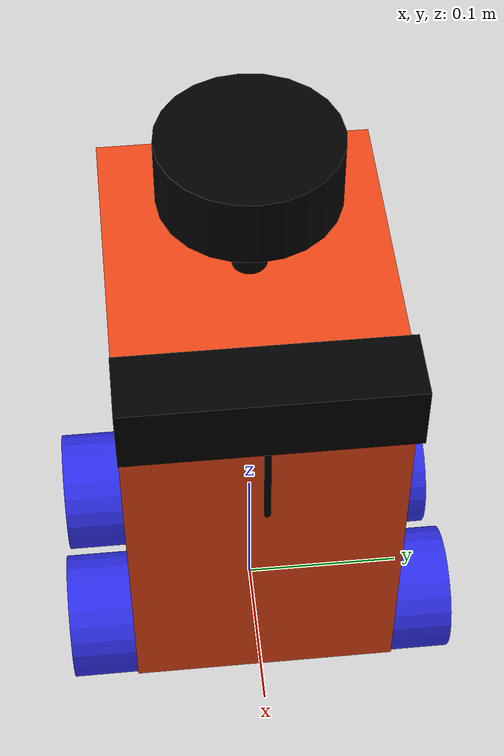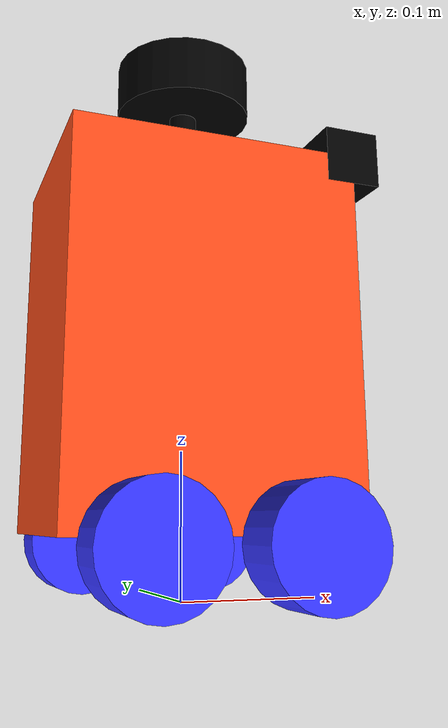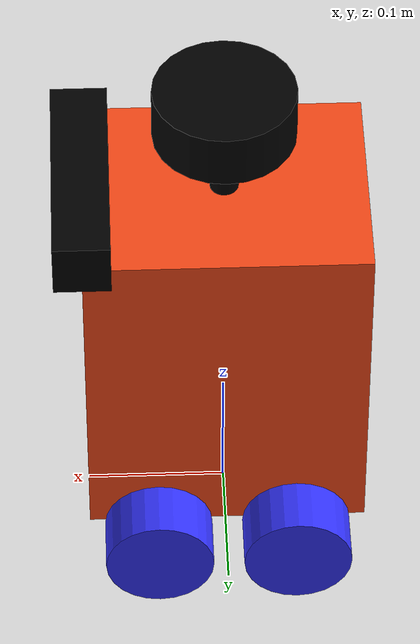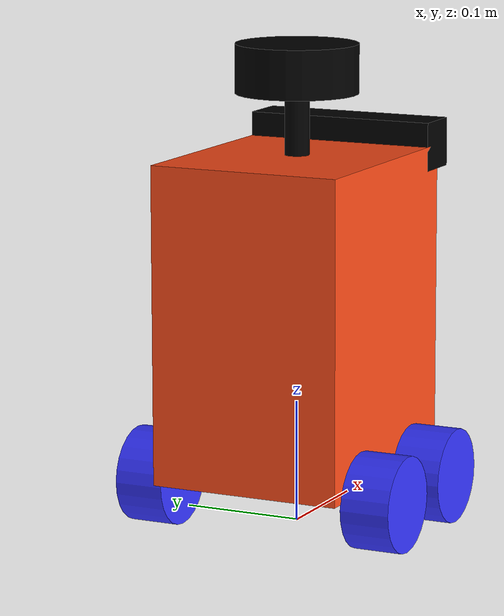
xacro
<?xml version="1.0" encoding="UTF-8" ?>
<robot name="Bumbar" xmlns:xacro="http://www.ros.org/wiki/xacro" >

    <xacro:include filename="inertial_macros.xacro"/>
    <xacro:include filename="camera.xacro"/>
    <xacro:include filename="lidar.xacro"/>

    <xacro:property name="chassis_length" value="0.20"/>
    <xacro:property name="chassis_width" value="0.16"/>
    <xacro:property name="chassis_height" value="0.26"/>
    <xacro:property name="chassis_mass" value="1.0"/>
    <xacro:property name="wheel_radius" value="0.039"/>
    <xacro:property name="wheel_thickness" value="0.041"/>
    <xacro:property name="wheel_mass" value="0.05"/>

    <!-- FRONT LEFT WHEEL -->
    <xacro:property name="front_left_wheel_offset_x" value="-0.1"/>
    <xacro:property name="front_left_wheel_offset_y" value="0.05"/>
    <xacro:property name="front_left_wheel_offset_z" value="0.01"/>
    <!-- FRONT RIGHT WHEEL -->
    <xacro:property name="front_right_wheel_offset_x" value="0.10"/>
    <xacro:property name="front_right_wheel_offset_y" value="0.05"/>
    <xacro:property name="front_right_wheel_offset_z" value="0.01"/>
    <!-- BACK LEFT WHEEL -->
    <xacro:property name="bacK_left_wheel_offset_x" value="-0.1"/>
    <xacro:property name="bacK_left_wheel_offset_y" value="-0.05"/>
    <xacro:property name="bacK_left_wheel_offset_z" value="0.01"/>
    <!-- BACK RIGHT WHEEL -->
    <xacro:property name="bacK_right_wheel_offset_x" value="0.1"/>
    <xacro:property name="bacK_right_wheel_offset_y" value="-0.05"/>
    <xacro:property name="bacK_right_wheel_offset_z" value="0.01"/>

    <material name="white">
        <color rgba="1 1 1 1" />
    </material>

    <material name="orange">
        <color rgba="1 0.3 0.1 1"/>
    </material>

    <material name="blue">
        <color rgba="0.2 0.2 1 1"/>
    </material>

    <material name="black">
        <color rgba="0 0 0 1"/>
    </material>

    <material name="red">
        <color rgba="1 0 0 1"/>
    </material>

    <!-- BASE LINK -->

    <link name="base_link">

    </link>

    <!-- CHASSIS LINK -->

    <joint name="chassis_joint" type="fixed">
        <parent link="base_link"/>
        <child link="chassis"/>
        <origin xyz="0.0 0.0 0.1739"/>
    </joint>

    <link name="chassis">
        <visual>
            <origin xyz="0.0 0.0 0.0"/>
            <geometry>
                <box size="${chassis_length} ${chassis_width} ${chassis_height}"/>
            </geometry>
            <material name="orange"/>
        </visual>
        <collision>
            <origin xyz="0.0 0 0.0"/>
            <geometry>
                <box size="${chassis_length} ${chassis_width} ${chassis_height}"/>
            </geometry>
        </collision>
        <xacro:inertial_box mass="0.5" x="${chassis_length}" y="${chassis_width}" z="${chassis_height}">
            <origin xyz="0.1 0 0.14" rpy="0 0 0"/>
        </xacro:inertial_box>
    </link>

    <gazebo reference="chassis">
        <material>Gazebo/Orange</material>
    </gazebo>

    <!--FRONT RIGHT WHEEL LINK -->

    <joint name="front_right_wheel_joint" type="continuous">
        <parent link="base_link"/>
        <child link="front_right_wheel"/>
        <origin xyz="0.05 -0.1  0.039" rpy="${pi/2} 0 0" />
        <axis xyz="0 0 -1"/>
    </joint>

    <link name="front_right_wheel">
        <visual>
            <geometry>
                <cylinder radius="${wheel_radius}" length="${wheel_thickness}"/>
            </geometry>
            <material name="blue"/>
        </visual>
        <collision>
            <geometry>
                <sphere radius="${wheel_radius}"/>
            </geometry>
            <origin xyz="0.0 0  0" rpy="${pi/2} 0 0" />
            <!--axis xyz="0 -1 -1"/-->
        </collision>
        <xacro:inertial_cylinder mass="${wheel_mass}" length="${wheel_thickness}" radius="${wheel_radius}">
           <origin xyz="0.0 0  0.0" rpy="${pi/2} 0 0" />
            <!--axis xyz="0 -1 -1"/-->
        </xacro:inertial_cylinder>
    </link>

    <gazebo reference="front_right_wheel">
        <material>Gazebo/Blue</material>
    </gazebo>

    <!-- FRONT RIGHT WHEEL LINK -->
    <joint name="fron_left_wheel_joint" type="continuous">
        <parent link="base_link"/>
        <child link="front_left_wheel"/>
        <origin xyz="0.05 0.1 0.039" rpy="-${pi/2} 0 0" />
        <axis xyz="0 0 1"/>
    </joint>

    <link name="front_left_wheel">
        <visual>
            <geometry>
                <cylinder radius="${wheel_radius}" length="${wheel_thickness}"/>
            </geometry>
            <material name="blue"/>
        </visual>
        <collision>
            <geometry>
                <sphere radius="${wheel_radius}"/>
            </geometry>
        </collision>
        <xacro:inertial_cylinder mass="${wheel_mass}" length="${wheel_thickness}" radius="${wheel_radius}">
            <origin xyz="0.0 0 0.0" rpy="-${pi/2} 0 0" />
            <!--axis xyz="0 1 1"/-->
        </xacro:inertial_cylinder>
    </link>

    <gazebo reference="front_right_wheel">
        <material>Gazebo/Blue</material>
    </gazebo>

    <!-- BACK RIGHT WHEEL LINK -->
    <joint name="back_right_wheel_joint" type="continuous">
        <parent link="base_link"/>
        <child link="back_right_wheel"/>
        <origin xyz="-0.05 -0.1  0.039" rpy="${pi/2} 0 0" />
        <axis xyz="0 0 -1"/>
    </joint>

    <link name="back_right_wheel">
        <visual>
            <geometry>
                <cylinder radius="${wheel_radius}" length="${wheel_thickness}"/>
            </geometry>
            <material name="blue"/>
        </visual>
        <collision>
            <geometry>
                <sphere radius="${wheel_radius}"/>
            </geometry>
            <origin xyz="0.0 0  0.0" rpy="${pi/2} 0 0" />
            <!--axis xyz="0 0 -1"/-->
        </collision>
        <xacro:inertial_cylinder mass="${wheel_mass}" length="${wheel_thickness}" radius="${wheel_radius}">
            <origin xyz="0.0 0  0.0" rpy="${pi/2} 0 0" />
        </xacro:inertial_cylinder>
    </link>

    <gazebo reference="back_right_wheel">
        <material>Gazebo/Blue</material>
    </gazebo>

    <!-- BACK LEFT WHEEL LINK -->

    <joint name="back_left_wheel_joint" type="continuous">
        <parent link="base_link"/>
        <child link="back_left_wheel"/>
        <origin xyz="-0.05 0.1 0.039" rpy="-${pi/2} 0 0" />
        <axis xyz="0 0 1"/>
    </joint>

    <link name="back_left_wheel">
        <visual>
            <geometry>
                <cylinder radius="${wheel_radius}" length="${wheel_thickness}"/>
            </geometry>
            <material name="blue"/>
        </visual>
        <collision>
            <geometry>
                <sphere radius="${wheel_radius}"/>
            </geometry>
            <origin xyz="0.0 0. 0.0" rpy="-${pi/2} 0 0" />
            <!--axis xyz="0 0 1"/-->
        </collision>
        <xacro:inertial_cylinder mass="${wheel_mass}" length="${wheel_thickness}" radius="${wheel_radius}">
            <origin xyz="0.0 0 0.0" rpy="-${pi/2} 0 0" />
        </xacro:inertial_cylinder>
    </link>

    <gazebo reference="left_wheel">
        <material>Gazebo/Blue</material>
    </gazebo>

</robot>

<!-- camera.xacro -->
<robot xmlns:xacro="http://www.ros.org/wiki/xacro" >

    <joint name="camera_joint" type="fixed">
        <parent link="chassis"/>
        <child link="camera_link"/>
        <origin xyz="0.1 0 0.13" rpy="0 0 0"/>
    </joint>

    <link name="camera_link">
        <visual>
            <geometry>
                <box size="0.040 0.16 0.04"/>
            </geometry>
            <material name="black"/>
        </visual>
        <visual>
            <origin xyz="0 0 -0.05"/>
            <geometry>
                <cylinder radius="0.002" length="0.1"/>
            </geometry>
            <material name="black"/>
        </visual>
    </link>

    <joint name="camera_optical_joint" type="fixed">
        <parent link="camera_link"/>
        <child link="camera_link_optical"/>
        <origin xyz="0 0 0" rpy="${-pi/2} 0 ${-pi/2}"/>
    </joint>

    <link name="camera_link_optical"></link>

    <gazebo reference="camera_link">
        <material>Gazebo/Black</material>

        <sensor name="camera" type="camera">
            <pose> 0 0 0 0 0 0 </pose>
            <visualize>true</visualize>
            <update_rate>10</update_rate>
            <camera>
                <horizontal_fov>1.089</horizontal_fov>
                <image>
                    <format>R8G8B8</format>
                    <width>640</width>
                    <height>480</height>
                </image>
                <clip>
                    <near>0.05</near>
                    <far>8.0</far>
                </clip>
            </camera>
            <plugin name="camera_controller" filename="libgazebo_ros_camera.so">
                <frame_name>camera_link_optical</frame_name>
            </plugin>
        </sensor>
    </gazebo>

</robot>
<?xml version="1.0"?>
<robot xmlns:xacro="http://www.ros.org/wiki/xacro" >

    <!-- Specify some standard inertial calculations https://en.wikipedia.org/wiki/List_of_moments_of_inertia -->
    <!-- These make use of xacro's mathematical functionality -->

    <xacro:macro name="inertial_sphere" params="mass radius *origin">
        <inertial>
            <xacro:insert_block name="origin"/>
            <mass value="${mass}" />
            <inertia ixx="${(2/5) * mass * (radius*radius)}" ixy="0.0" ixz="0.0"
                    iyy="${(2/5) * mass * (radius*radius)}" iyz="0.0"
                    izz="${(2/5) * mass * (radius*radius)}" />
        </inertial>
    </xacro:macro>

    <xacro:macro name="inertial_box" params="mass x y z *origin">
        <inertial>
            <xacro:insert_block name="origin"/>
            <mass value="${mass}" />
            <inertia ixx="${(1/12) * mass * (y*y+z*z)}" ixy="0.0" ixz="0.0"
                    iyy="${(1/12) * mass * (x*x+z*z)}" iyz="0.0"
                    izz="${(1/12) * mass * (x*x+y*y)}" />
        </inertial>
    </xacro:macro>

    <xacro:macro name="inertial_cylinder" params="mass length radius *origin">
        <inertial>
            <xacro:insert_block name="origin"/>
            <mass value="${mass}" />
            <inertia ixx="${(1/12) * mass * (3*radius*radius + length*length)}" ixy="0.0" ixz="0.0"
                    iyy="${(1/12) * mass * (3*radius*radius + length*length)}" iyz="0.0"
                    izz="${(1/2) * mass * (radius*radius)}" />
        </inertial>
    </xacro:macro>

</robot>

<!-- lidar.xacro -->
<robot xmlns:xacro="http://www.ros.org/wiki/xacro" >

    <joint name="laser_joint" type="fixed">
        <parent link="chassis"/>
        <child link="laser"/>
        <origin xyz="0.0 0.0 0.20" rpy="0 0 0"/>
    </joint>

    <link name="laser">
        <visual>
            <geometry>
                <cylinder radius="0.05" length="0.04"/>
            </geometry>
            <material name="black"/>
        </visual>
        <visual>
            <origin xyz="0 0 -0.05"/>
            <geometry>
                <cylinder radius="0.01" length="0.1"/>
            </geometry>
            <material name="black"/>
        </visual>
        <collision>
            <geometry>
                <cylinder radius="0.05" length="0.04"/>
            </geometry>
        </collision>
        <xacro:inertial_cylinder mass="0.1" length="0.04" radius="0.05">
            <origin xyz="0 0 0" rpy="0 0 0"/>
        </xacro:inertial_cylinder>
    </link>

    <gazebo reference="laser_frame">
        <material>Gazebo/Black</material>

        <sensor name="laser" type="ray">
            <pose> 0 0 0 0 0 0 </pose>
            <visualize>false</visualize>
            <update_rate>10</update_rate>
            <ray>
                <scan>
                    <horizontal>
                        <samples>360</samples>
                        <min_angle>-3.14</min_angle>
                        <max_angle>3.14</max_angle>
                    </horizontal>
                </scan>
                <range>
                    <min>0.3</min>
                    <max>12</max>
                </range>
            </ray>
            <plugin name="laser_controller" filename="libgazebo_ros_ray_sensor.so">
                <ros>
                    <argument>~/out:=scan</argument>
                </ros>
                <output_type>sensor_msgs/LaserScan</output_type>
                <frame_name>laser_frame</frame_name>
            </plugin>
        </sensor>
    </gazebo>

</robot>
